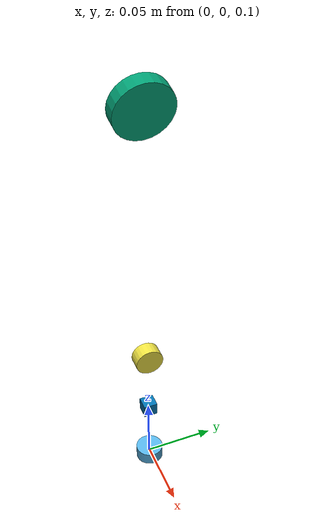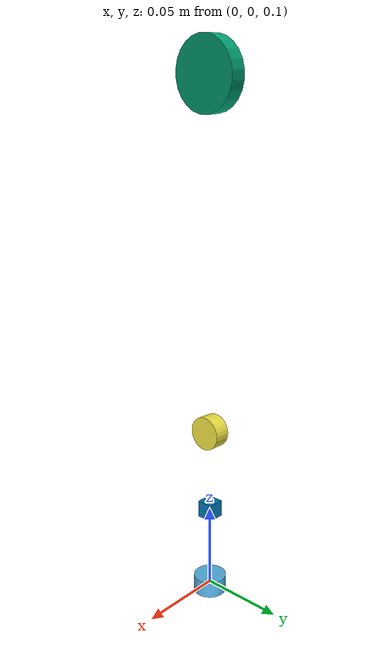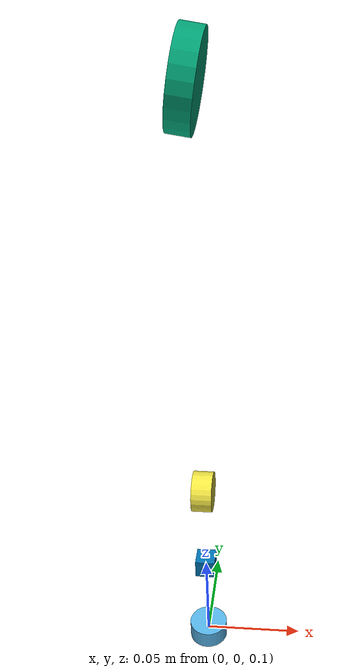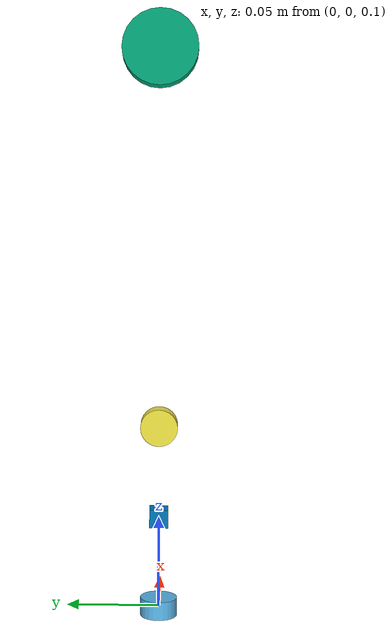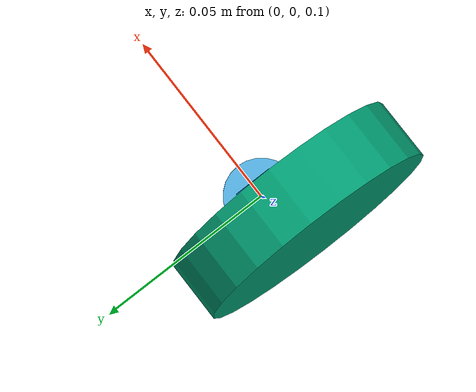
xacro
<?xml version="1.0"?>
<robot name="webcam_lidar" xmlns:xacro="http://www.ros.org/wiki/xacro">

  <link name="base_link">
  </link>

  <link name="lidar_link">
    <visual>
      <origin rpy="0 0 0" xyz="0 0 0"/>
      <geometry>
        <cylinder length="0.01" radius="0.01"/>
      </geometry>
    </visual>
    <collision>
      <origin rpy="0 0 0" xyz="0 0 0"/>
      <geometry>
        <cylinder length="0.01" radius="0.01"/>
      </geometry>
    </collision>
    <inertial>
        <mass value="0.1"/>
        <inertia ixx="0.0025440000000000003" ixy="0" ixz="0" iyy="0.002892" iyz="0" izz="0.0050520000000000001"/>
    </inertial>
  </link>
  <joint name="lidar_joint" type="fixed">
    <parent link="base_link"/>
    <child link="lidar_link"/>
    <origin rpy="0 0 0" xyz="0 0 0.1"/>
  </joint>

  <!-- camera -->

  <link name="head_camera">
    <visual>
        <origin rpy="0 ${pi/2} 0" xyz="0 0 0"/>
        <geometry>
          <cylinder length="0.01" radius="0.02"/>
        </geometry>
    </visual>
    <inertial>
      <origin rpy="0 ${pi/2} 0" xyz="0 0 0"/>
      <geometry>
        <cylinder length="0.01" radius="0.02"/>
      </geometry>
        <mass value="1"/>
        <inertia ixx="0.19833333333333333" ixy="0" ixz="0" iyy="0.24266666666666664" iyz="0" izz="0.42233333333333328"/>
    </inertial>
  </link>
  <joint name="head_camera_joint" type="fixed">
    <parent link="lidar_link"/>
    <child link="head_camera"/>
    <origin rpy="0 0.15 0" xyz="0 0 0.3"/>
  </joint>

  <gazebo reference="head_camera">
    <sensor type="camera" name="head_camera">
      <update_rate>30.0</update_rate>
      <camera name="head_camera">
        <horizontal_fov>1.3</horizontal_fov>
        <image>
          <width>640</width>
          <height>480</height>
          <format>R8G8B8</format>
        </image>
        <clip>
          <near>0.01</near>
          <far>10.0</far>
        </clip>
      </camera>
      <plugin name="camera_controller" filename="libgazebo_ros_camera.so">
        <alwaysOn>true</alwaysOn>
        <updateRate>30.0</updateRate>
        <cameraName>head_camera</cameraName>
        <imageTopicName>image_raw</imageTopicName>
        <cameraInfoTopicName>camera_info</cameraInfoTopicName>
        <frameName>head_camera</frameName>
        <hackBaseline>0.07</hackBaseline>
        <distortionK1>0.0</distortionK1>
        <distortionK2>0.0</distortionK2>
        <distortionK3>0.0</distortionK3>
        <distortionT1>0.0</distortionT1>
        <distortionT2>0.0</distortionT2>
      </plugin>
    </sensor>
  </gazebo>

  <!-- laser line projector -->

  <link name="laser_frame">
    <visual>
        <origin rpy="0 0 0" xyz="0 0 0"/>
        <geometry>
          <cylinder length="0.01" radius="0.01"/>
        </geometry>
    </visual>
  </link>
  <joint name="projector_joint" type="fixed">
    <parent link="lidar_link"/>
    <child link="laser_frame"/>
    <origin rpy="0 ${-pi/2} 0" xyz="0 0 0.1"/>
  </joint>

  <gazebo reference="laser_frame">
    <projector name="texture_projector">
      <pose>0 0 0 0 0 0</pose>
      <texture>laser_line.png</texture>
      <fov>2.0</fov>
      <near_clip>0.01</near_clip>
      <far_clip>10</far_clip>
    </projector>
  </gazebo>

  <!-- reference -->

  <joint name="hokuyo_joint" type="fixed">
    <axis xyz="0 1 0" />
    <origin xyz="0 0 0.15" rpy="0 0 0"/>
    <parent link="base_link"/>
    <child link="hokuyo_link"/>
  </joint>

  <link name="hokuyo_link">
    <collision>
      <origin xyz="0 0 0" rpy="0 0 0"/>
      <geometry>
        <box size="0.01 0.01 0.01"/>
      </geometry>
    </collision>

    <visual>
      <origin xyz="0 0 0" rpy="0 0 0"/>
      <geometry>
        <box size="0.01 0.01 0.01"/>
      </geometry>
    </visual>

    <inertial>
      <mass value="1e-5" />
      <origin xyz="0 0 0" rpy="0 0 0"/>
      <inertia ixx="1e-6" ixy="0" ixz="0" iyy="1e-6" iyz="0" izz="1e-6" />
    </inertial>
  </link>
  <!-- hokuyo -->
  <gazebo reference="hokuyo_link">
    <sensor type="gpu_ray" name="head_hokuyo_sensor">
      <pose>0 0 0 0 0 0</pose>
      <visualize>false</visualize>
      <update_rate>40</update_rate>
      <ray>
        <scan>
          <horizontal>
            <samples>720</samples>
            <resolution>1</resolution>
            <min_angle>-1.570796</min_angle>
            <max_angle>1.570796</max_angle>
          </horizontal>
        </scan>
        <range>
          <min>0.10</min>
          <max>30.0</max>
          <resolution>0.01</resolution>
        </range>
        <noise>
          <type>gaussian</type>
          <mean>0.0</mean>
          <stddev>0.01</stddev>
        </noise>
      </ray>
      <plugin name="gazebo_ros_head_hokuyo_controller" filename="libgazebo_ros_gpu_laser.so">
        <topicName>/reference/scan</topicName>
        <frameName>hokuyo_link</frameName>
      </plugin>
    </sensor>
  </gazebo>

</robot>
